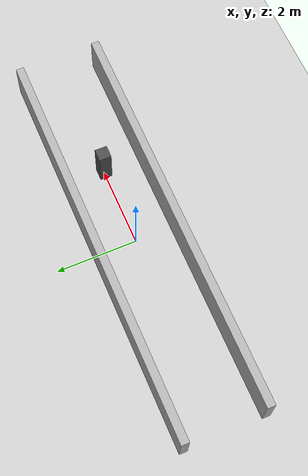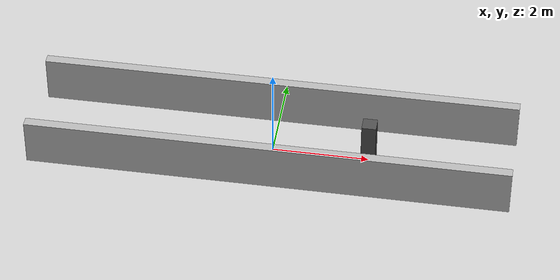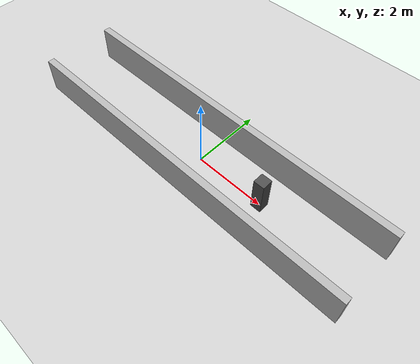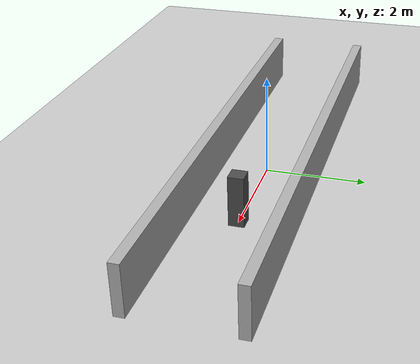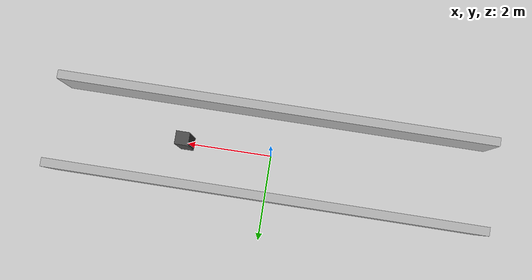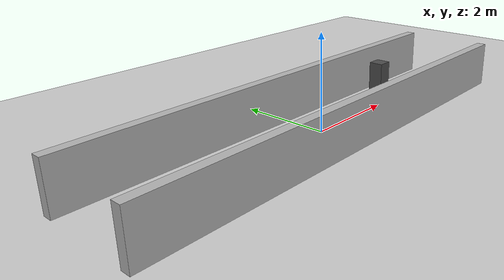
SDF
<?xml version="1.0" ?>
<sdf version="1.6">
  <world name="corridor_world">

    <!-- Освещение -->
    <include>
      <uri>model://sun</uri>
    </include>

    <!-- Плоскость -->
    <include>
      <uri>model://ground_plane</uri>
    </include>

    <!-- Fixed external camera -->
    <model name="external_camera">
      <static>true</static>

      <!-- Позиция над коридором -->
      <pose>0 0 3.0 0 1.57 0</pose>

      <link name="link">
        <sensor name="camera" type="camera">
          <always_on>true</always_on>
          <update_rate>30</update_rate>
          <visualize>true</visualize>

          <camera>
            <horizontal_fov>1.047</horizontal_fov>
            <image>
              <width>640</width>
              <height>480</height>
              <format>R8G8B8</format>
            </image>
            <clip>
              <near>0.1</near>
              <far>50</far>
            </clip>
          </camera>

          <plugin name="gazebo_ros_camera" filename="libgazebo_ros_camera.so">
            <robotNamespace>/</robotNamespace>
            <cameraName>camera</cameraName>
            <imageTopicName>image_raw</imageTopicName>
            <cameraInfoTopicName>camera_info</cameraInfoTopicName>
            <frameName>camera_link</frameName>
          </plugin>
        </sensor>
      </link>
    </model>

    <model name="wall_left">
      <static>true</static>
      <pose>0 1.0 0.5 0 0 0</pose>
      <link name="link">
        <collision name="collision">
          <geometry>
            <box>
              <size>10 0.2 1</size>
            </box>
          </geometry>
        </collision>
        <visual name="visual">
          <geometry>
            <box>
              <size>10 0.2 1</size>
            </box>
          </geometry>
          <material>
            <ambient>0.7 0.7 0.7 1</ambient>
          </material>
        </visual>
      </link>
    </model>

    <model name="wall_right">
      <static>true</static>
      <pose>0 -1.0 0.5 0 0 0</pose>
      <link name="link">
        <collision name="collision">
          <geometry>
            <box>
              <size>10 0.2 1</size>
            </box>
          </geometry>
        </collision>
        <visual name="visual">
          <geometry>
            <box>
              <size>10 0.2 1</size>
            </box>
          </geometry>
          <material>
            <ambient>0.7 0.7 0.7 1</ambient>
          </material>
        </visual>
      </link>
    </model>

    <model name="pillar_1">
      <static>true</static>
      <pose>2 0 0.5 0 0 0</pose>
      <link name="link">
        <collision name="collision">
          <geometry>
            <box>
              <size>0.3 0.3 1</size>
            </box>
          </geometry>
        </collision>
        <visual name="visual">
          <geometry>
            <box>
              <size>0.3 0.3 1</size>
            </box>
          </geometry>
          <material>
            <ambient>0.3 0.3 0.3 1</ambient>
          </material>
        </visual>
      </link>
    </model>
  </world>
</sdf>
